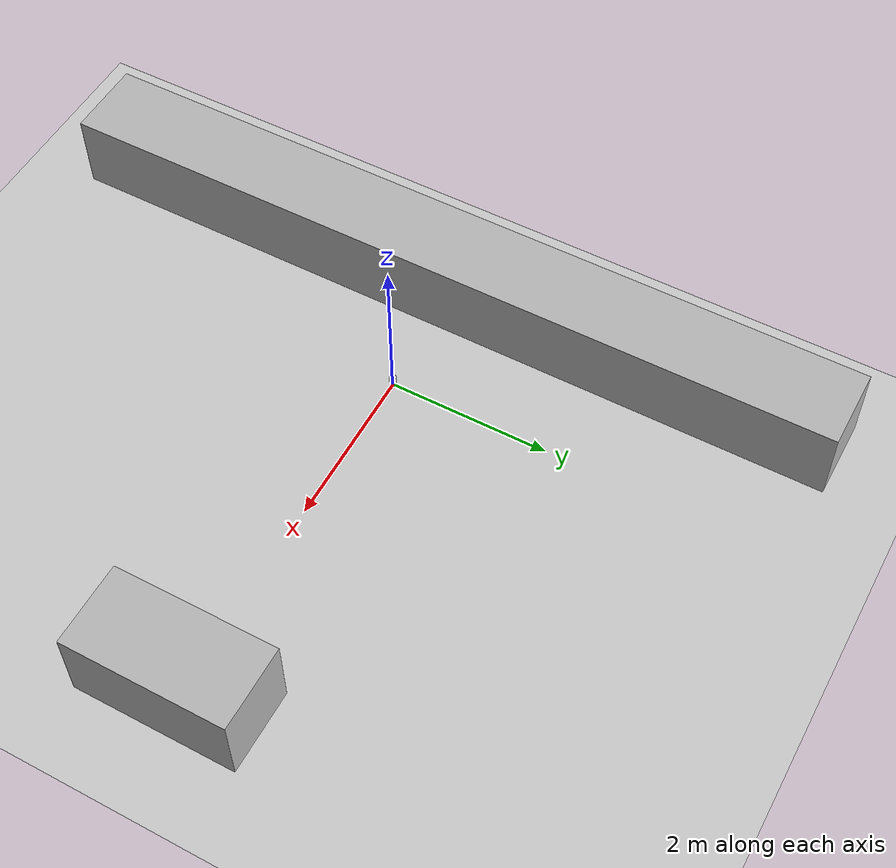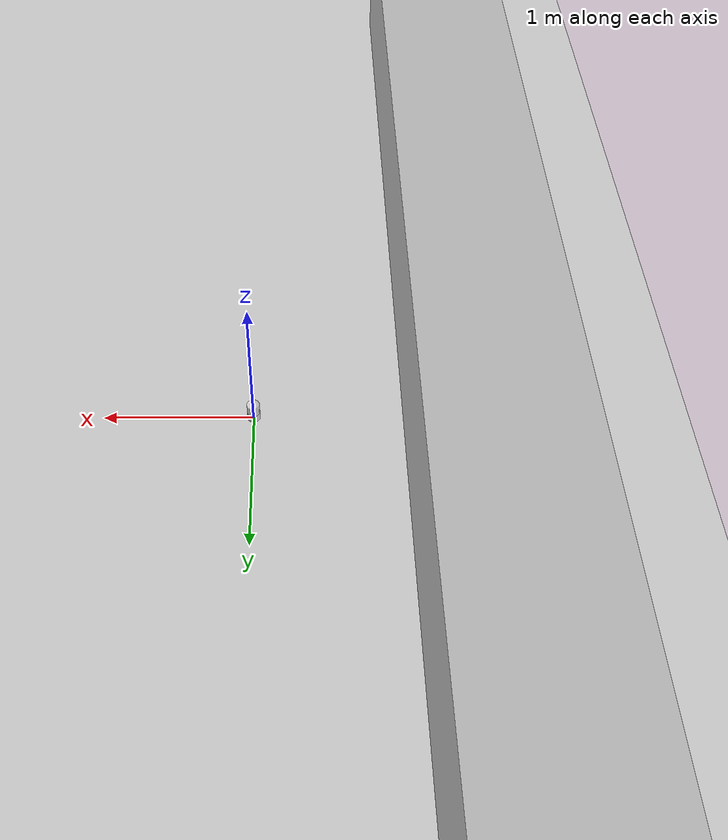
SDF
<?xml version="1.0" ?>
<sdf version="1.5">
  <world name="cube_sim">
    <physics type="ode">
      <max_step_size>0.00001</max_step_size>
      <real_time_update_rate>10000</real_time_update_rate>
      <gravity>0 0 -9.8</gravity>
    </physics>
    <!-- A global light source -->
    <include>
      <uri>model://sun</uri>
    </include>
    <!-- A ground plane -->
    <include>
      <uri>model://ground_plane</uri>
    </include>

    <model name="sensors">
      <pose>0 0 0 0 0 0</pose>
      <include>
        <uri>model://velodyne_hdl32</uri>
      </include>

      <include>
        <uri>model://imu_6_axis</uri>
      </include>
      <joint name="joint" type="fixed">
        <parent>velodyne_hdl-32::base</parent>
        <child>imu_6_axis::base</child>
      </joint>
    </model>

    <model name="my_box">
      <pose>-1.5 0 0.5 0 0 0</pose>
      <static>true</static>
      <link name="link">
        <collision name="collision">
          <geometry>
            <box>
              <size>1 10 1</size>
            </box>
          </geometry>
        </collision>
        <visual name="visual">
          <geometry>
            <box>
              <size>1 10 1</size>
            </box>
          </geometry>
        </visual>
      </link>
    </model>

    <model name="my_box2">
      <pose>4.5 0 0.5 0 0 0</pose>
      <static>true</static>
      <link name="link">
        <collision name="collision">
          <geometry>
            <box>
              <size>1 2 1</size>
            </box>
          </geometry>
        </collision>
        <visual name="visual">
          <geometry>
            <box>
              <size>1 2 1</size>
            </box>
          </geometry>
        </visual>
      </link>
    </model>
  </world>
</sdf>

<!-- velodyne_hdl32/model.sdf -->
<sdf version="1.5">
  <model name="velodyne_hdl-32">
    <!-- Give the base link a unique name -->
    <link name="base">

      <!-- Offset the base by half the lenght of the cylinder -->
      <pose>0 0 0.029335 0 0 0</pose>
      <inertial>
        <mass>1.2</mass>
        <inertia>
          <ixx>0.001087473</ixx>
          <iyy>0.001087473</iyy>
          <izz>0.001092437</izz>
          <ixy>0</ixy>
          <ixz>0</ixz>
          <iyz>0</iyz>
        </inertia>
      </inertial>
      <collision name="base_collision">
        <geometry>
          <cylinder>
            <!-- Radius and length provided by Velodyne -->
            <radius>.04267</radius>
            <length>.05867</length>
          </cylinder>
        </geometry>
      </collision>

      <!-- The visual is mostly a copy of the collision -->
      <visual name="base_visual">
        <!-- Offset the visual by have the base's height. We are not rotating
           mesh since symmetrical -->
        <pose>0 0 -0.029335 0 0 0</pose>
        <geometry>
          <mesh>
            <uri>model://velodyne_hdl32/meshes/velodyne_base.dae</uri>
          </mesh>
        </geometry>
      </visual>
    </link>

    <!-- Give the base link a unique name -->
    <link name="top">

      <!-- Add a ray sensor, and give it a name -->
      <sensor type="ray" name="sensor">

        <pose>0 0 -0.004645 1.570796326794897 0 3.141592653589793</pose>

        <!-- Enable visualization to see the rays in the GUI -->
        <visualize>true</visualize>

        <!-- Set the update rate of the sensor -->
        <update_rate>20000</update_rate>
        <ray>
          <noise>
            <!-- Use gaussian noise -->
            <type>gaussian</type>
            <mean>0.0</mean>
            <stddev>0.0</stddev>
          </noise>
          <!-- The scan element contains the horizontal and vertical beams.
             We are leaving out the vertical beams for this tutorial. -->
          <scan>

            <!-- The horizontal beams -->
            <horizontal>
              <!-- The velodyne has 32 beams(samples) -->
              <samples>32</samples>

              <resolution>1</resolution>

              <!-- Minimum angle in radians -->
              <min_angle>-0.53529248</min_angle>

              <!-- Maximum angle in radians -->
              <max_angle>0.18622663</max_angle>
            </horizontal>
          </scan>

          <!-- Range defines characteristics of an individual beam -->
          <range>

            <!-- Minimum distance of the beam -->
            <min>0.05</min>

            <!-- Maximum distance of the beam -->
            <max>70</max>

            <!-- Linear resolution of the beam -->
            <resolution>0.0005</resolution>
          </range>
        </ray>
        <!-- test plugin -->
        <plugin name="plugin_1" filename="liblidar_plugin.so">
          <topicName>velodyne_points</topicName>
          <frameName>velodyne_link</frameName>
        </plugin>
      </sensor>

      <!-- Vertically offset the top cylinder by the length of the bottom
        cylinder and half the length of this cylinder. -->
      <pose>0 0 0.095455 0 0 0</pose>
      <inertial>
        <mass>0.1</mass>
        <inertia>
          <ixx>0.000090623</ixx>
          <iyy>0.000090623</iyy>
          <izz>0.000091036</izz>
          <ixy>0</ixy>
          <ixz>0</ixz>
          <iyz>0</iyz>
        </inertia>
      </inertial>
      <collision name="top_collision">
        <geometry>
          <cylinder>
            <!-- Radius and length provided by Velodyne -->
            <radius>0.04267</radius>
            <length>0.07357</length>
          </cylinder>
        </geometry>
      </collision>

      <!-- The visual is mostly a copy of the collision -->
      <visual name="top_visual">
        <!-- Lower the mesh by half the height, and rotate by 90 degrees -->
        <pose>0 0 -0.0376785 0 0 -1.570796326794897</pose>
        <geometry>
          <!-- The mesh tag indicates that we will use a 3D mesh as
             a visual -->
          <mesh>
            <!-- The URI should refer to the 3D mesh. The "model:"
              URI scheme indicates that the we are referencing a Gazebo
              model. -->
            <uri>model://velodyne_hdl32/meshes/velodyne_top.dae</uri>
          </mesh>
        </geometry>
      </visual>
    </link>

    <joint type="revolute" name="joint">

      <!-- Position the joint at the bottom of the top link -->
      <pose>0 0 -0.036785 0 0 0</pose>

      <!-- Use the base link as the parent of the joint -->
      <parent>base</parent>

      <!-- Use the top link as the child of the joint -->
      <child>top</child>

      <!-- The axis defines the joint's degree of freedom -->
      <axis>

        <!-- Revolve around the z-axis -->
        <xyz>0 0 1</xyz>

        <!-- Limit refers to the range of motion of the joint -->
        <limit>

          <!-- Use a very large number to indicate a continuous revolution -->
          <lower>-10000000000000000</lower>
          <upper>10000000000000000</upper>
        </limit>
      </axis>
    </joint>
    <plugin name="velodyne_control" filename="libvelodyne_plugin.so"/>
  </model>
</sdf>

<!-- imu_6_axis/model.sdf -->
<sdf version="1.5">
  <model name="imu_6_axis">
    <link name="base">
      <inertial>
        <inertial>
          <mass>0.01</mass>
          <inertia>
            <ixx>0</ixx>
            <iyy>0</iyy>
            <izz>0</izz>
            <ixy>0</ixy>
            <ixz>0</ixz>
            <iyz>0</iyz>
          </inertia>
        </inertial>
      </inertial>
      <visual name="visual">
        <geometry>
          <box>
            <size>0.02 0.02 0.02</size>
          </box>
        </geometry>
        <material>
          <ambient>0.2 0.2 0.2 1.0</ambient>
          <diffuse>.421 0.225 0.0 1.0</diffuse>
        </material>
      </visual>
      <sensor name='imu_sensor' type='imu'>
        <update_rate>200</update_rate>

        <plugin name="plugin" filename="libgazebo_ros_imu_sensor.so">
          <topicName>imu</topicName>
          <updateRateHZ>200</updateRateHZ>
          <frameName>imu_link</frameName>
        </plugin>
      </sensor>
    </link>
  </model>
</sdf>
